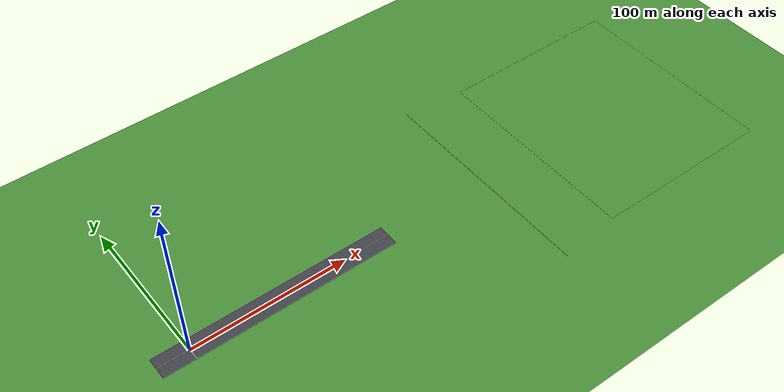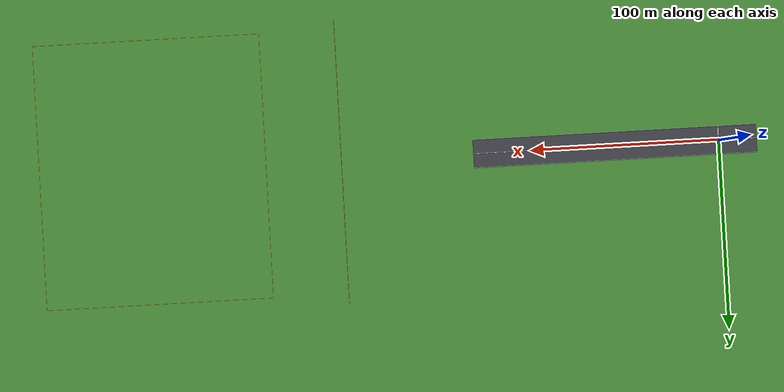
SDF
<sdf version="1.9">
 <world name="teknofest_2026">
  <physics name="1ms" type="ignored">
   <max_step_size>0.001</max_step_size>
   <real_time_factor>1.0</real_time_factor>
  </physics>
  <plugin filename="gz-sim-physics-system" name="gz::sim::systems::Physics"/>
  <plugin filename="gz-sim-user-commands-system" name="gz::sim::systems::UserCommands"/>
  <plugin filename="gz-sim-scene-broadcaster-system" name="gz::sim::systems::SceneBroadcaster"/>
  <plugin filename="gz-sim-contact-system" name="gz::sim::systems::Contact"/>
  <plugin filename="gz-sim-imu-system" name="gz::sim::systems::Imu"/>
  <plugin filename="gz-sim-navsat-system" name="gz::sim::systems::NavSat"/>
  <plugin filename="gz-sim-sensors-system" name="gz::sim::systems::Sensors">
   <render_engine>ogre2</render_engine>
  </plugin>
  <scene>
   <ambient>0.55 0.55 0.55 1</ambient>
   <background>0.55 0.70 0.90 1</background>
   <shadows>true</shadows>
  </scene>
  <light type="directional" name="sun">
   <pose>0 0 50 0 0 0</pose>
   <diffuse>0.95 0.95 0.90 1</diffuse>
   <specular>0.40 0.40 0.35 1</specular>
   <attenuation>
    <range>2000</range>
    <constant>0.9</constant>
    <linear>0.01</linear>
    <quadratic>0.001</quadratic>
   </attenuation>
   <direction>-0.35 0.25 -0.90</direction>
  </light>
  <model name="ground_plane">
   <static>true</static>
   <link name="link">
    <collision name="collision">
     <geometry><plane><normal>0 0 1</normal><size>2000 2000</size></plane></geometry>
    </collision>
    <visual name="visual">
     <geometry><plane><normal>0 0 1</normal><size>2000 2000</size></plane></geometry>
     <material>
      <ambient>0.20 0.42 0.18 1</ambient>
      <diffuse>0.28 0.55 0.22 1</diffuse>
      <specular>0.05 0.05 0.05 1</specular>
     </material>
    </visual>
   </link>
  </model>
  <model name="runway">
   <static>true</static>
   <pose>55 0 0.01 0 0 0</pose>
   <link name="link">
    <visual name="asphalt">
     <geometry><box><size>150 15 0.02</size></box></geometry>
     <material>
      <ambient>0.18 0.18 0.20 1</ambient>
      <diffuse>0.25 0.25 0.28 1</diffuse>
      <specular>0.08 0.08 0.08 1</specular>
     </material>
    </visual>
    <collision name="asphalt_collision"><geometry><box><size>150 15 0.02</size></box></geometry></collision>
   </link>
  </model>
  <model name="runway_centerline">
   <static>true</static>
   <pose>55 0 0.025 0 0 0</pose>
   <link name="link">
    <visual name="line">
     <geometry><box><size>150 0.30 0.01</size></box></geometry>
     <material>
      <ambient>0.90 0.90 0.90 1</ambient>
      <diffuse>1.00 1.00 1.00 1</diffuse>
      <specular>0.20 0.20 0.20 1</specular>
     </material>
    </visual>
   </link>
  </model>
  <model name="start_finish_line">
   <static>true</static>
   <pose>0 0 0.03 0 0 0</pose>
   <link name="link">
    <visual name="line">
     <geometry><box><size>0.50 16.0 0.02</size></box></geometry>
     <material>
      <ambient>0.95 0.95 0.95 1</ambient>
      <diffuse>1.00 1.00 1.00 1</diffuse>
      <specular>0.30 0.30 0.30 1</specular>
      <emissive>0.15 0.15 0.15 1</emissive>
     </material>
    </visual>
    <collision name="line_collision"><geometry><box><size>0.50 16.0 0.02</size></box></geometry></collision>
   </link>
  </model>
  <model name="runway_edge_left">
   <static>true</static>
   <pose>55 7.4 0.025 0 0 0</pose>
   <link name="link">
    <visual name="edge">
     <geometry><box><size>150 0.20 0.01</size></box></geometry>
     <material><ambient>0.90 0.90 0.90 1</ambient><diffuse>1.00 1.00 1.00 1</diffuse></material>
    </visual>
   </link>
  </model>
  <model name="runway_edge_right">
   <static>true</static>
   <pose>55 -7.4 0.025 0 0 0</pose>
   <link name="link">
    <visual name="edge">
     <geometry><box><size>150 0.20 0.01</size></box></geometry>
     <material><ambient>0.90 0.90 0.90 1</ambient><diffuse>1.00 1.00 1.00 1</diffuse></material>
    </visual>
   </link>
  </model>
  <model name="pole_axis_marker">
   <static>true</static>
   <pose>200 0 0.02 0 0 0</pose>
   <link name="link">
    <visual name="axis">
     <geometry><box><size>0.20 150.0 0.01</size></box></geometry>
     <material><ambient>0.70 0.55 0.10 1</ambient><diffuse>0.85 0.70 0.15 1</diffuse></material>
    </visual>
   </link>
  </model>
  <model name="scan_area_border">
   <static>true</static>
   <pose>300 0 0.015 0 0 0</pose>
   <link name="link">
    <visual name="border_n">
     <pose>0 70 0 0 0 0</pose>
     <geometry><box><size>120 0.15 0.01</size></box></geometry>
     <material><ambient>0.80 0.70 0.05 1</ambient><diffuse>0.95 0.85 0.10 1</diffuse></material>
    </visual>
    <visual name="border_s">
     <pose>0 -70 0 0 0 0</pose>
     <geometry><box><size>120 0.15 0.01</size></box></geometry>
     <material><ambient>0.80 0.70 0.05 1</ambient><diffuse>0.95 0.85 0.10 1</diffuse></material>
    </visual>
    <visual name="border_w">
     <pose>-60 0 0 0 0 0</pose>
     <geometry><box><size>0.15 140 0.01</size></box></geometry>
     <material><ambient>0.80 0.70 0.05 1</ambient><diffuse>0.95 0.85 0.10 1</diffuse></material>
    </visual>
    <visual name="border_e">
     <pose>60 0 0 0 0 0</pose>
     <geometry><box><size>0.15 140 0.01</size></box></geometry>
     <material><ambient>0.80 0.70 0.05 1</ambient><diffuse>0.95 0.85 0.10 1</diffuse></material>
    </visual>
   </link>
  </model>
  <spherical_coordinates>
   <surface_model>EARTH_WGS84</surface_model>
   <world_frame_orientation>ENU</world_frame_orientation>
   <latitude_deg>39.925533</latitude_deg>
   <longitude_deg>32.866287</longitude_deg>
   <elevation>890.0</elevation>
   <heading_deg>0</heading_deg>
  </spherical_coordinates>
 </world>
</sdf>
